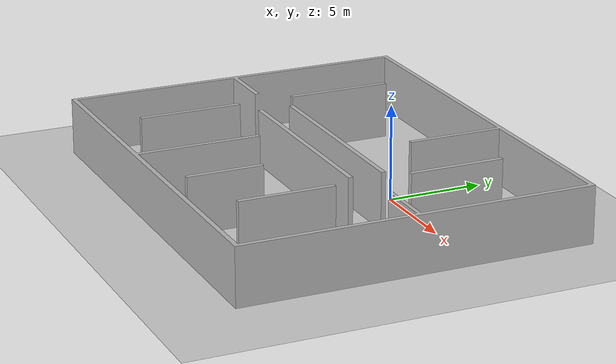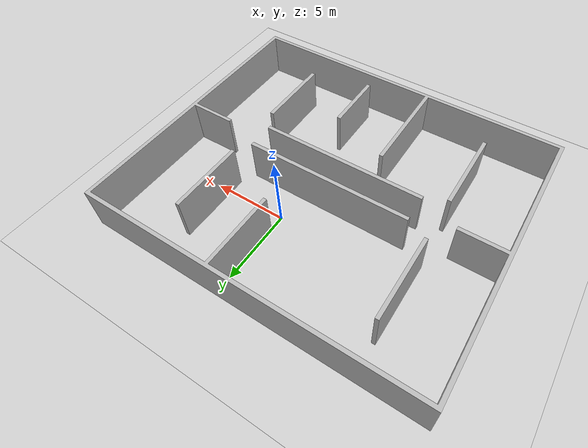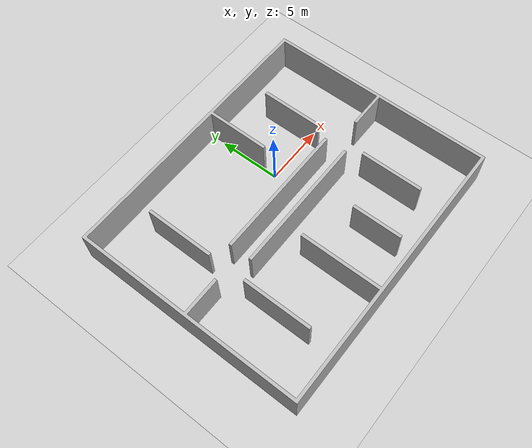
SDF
<?xml version="1.0" ?>
<sdf version="1.4">
  <world name="room">
    <physics type="ode">
      <gravity>0 0 -9.81</gravity>
      <ode>
        <solver>
          <type>quick</type>
          <iters>20</iters>
          <sor>1.0</sor>
        </solver>
        <constraints>
          <cfm>0.0</cfm>
          <erp>0.2</erp>
          <contact_max_correcting_vel>100.0</contact_max_correcting_vel>
          <contact_surface_layer>0.0</contact_surface_layer>
        </constraints>
      </ode>
      <real_time_update_rate>1000</real_time_update_rate>
      <max_step_size>0.001</max_step_size>
    </physics>
    <!-- A global light source -->
    <include>
      <uri>model://sun</uri>
    </include>
    <!-- A ground plane -->
    <include>
      <uri>model://ground_plane</uri>
    </include>
    <!-- A room  -->
    <include>
      <uri>model://room</uri>
      <name>my_room</name>
      <pose>-2 -3 0 0 0 0</pose>
    </include>

  </world>
</sdf>

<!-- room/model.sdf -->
<sdf version="1.4">
  <model name="room">
    <static>1</static>
    <link name="link">

      <collision name="colision1">
        <pose>0 0 0 0 0 0</pose>
        <geometry>
          <mesh>
            <uri>model://room/meshes/room.dae</uri>
	          <scale> 1 1 1 </scale>
          </mesh>
        </geometry>
      </collision>

      <visual name="visual1">
        <pose>0 0 0 0 0 0</pose>
        <geometry>
          <mesh>
            <uri>model://room/meshes/room.dae</uri>
	          <scale> 1 1 1 </scale>
          </mesh>
        </geometry>
      </visual>

      <velocity_decay>
        <linear>0.000000</linear>
        <angular>0.000000</angular>
      </velocity_decay>
      <self_collide>0</self_collide>
      <kinematic>0</kinematic>
      <gravity>1</gravity>
    </link>
  </model>
</sdf>
